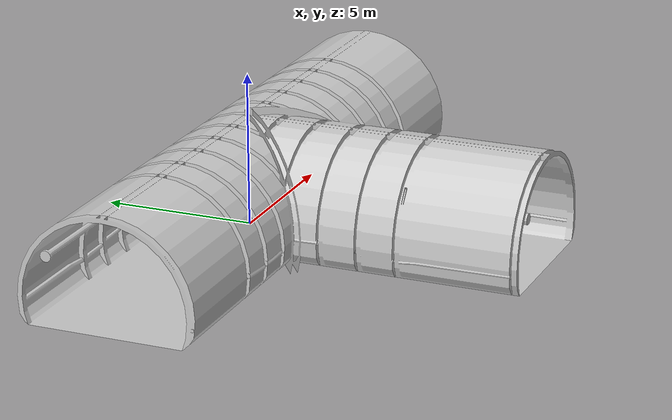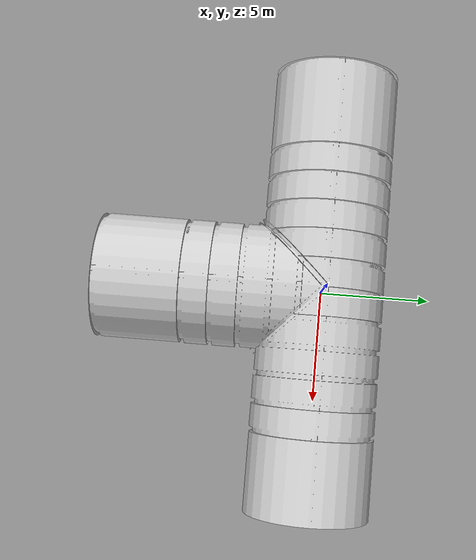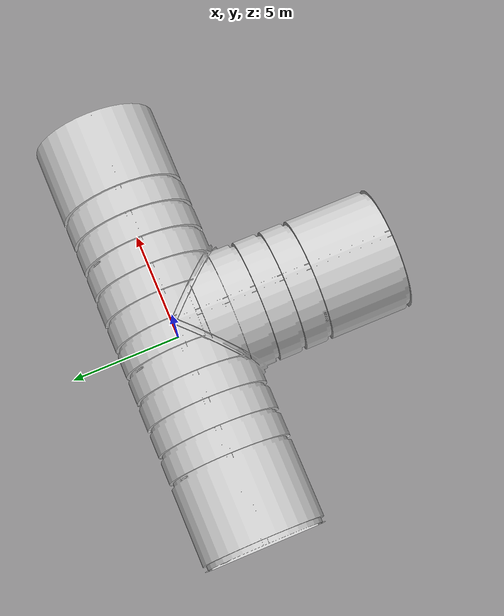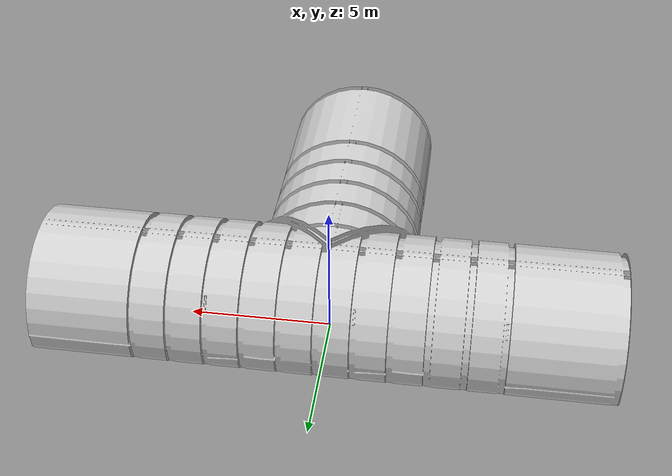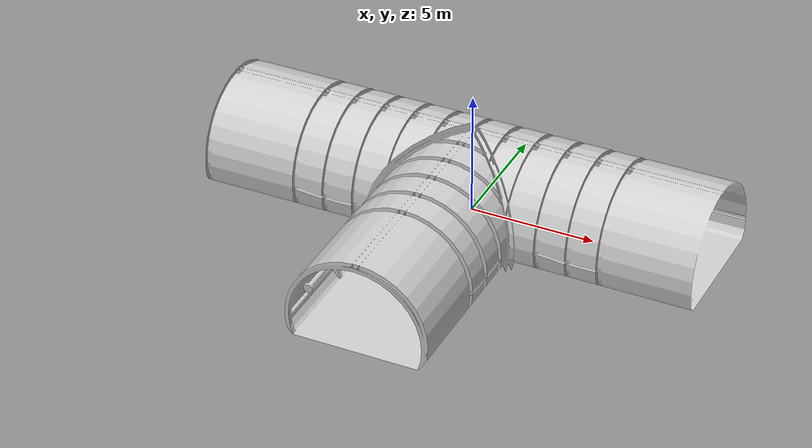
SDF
<?xml version="1.0" ?>
<sdf version="1.6">
  <model name="tunnel_intersection_t">
    <static>true</static>
    <link name="link">
      <collision name="collision">
        <geometry>
          <mesh>
            <uri>model://tunnel_intersection_t/meshes/tunnel_intersection_t.dae</uri>
          </mesh>
        </geometry>
      </collision>
      <visual name="visual">
        <geometry>
          <mesh>
            <uri>model://tunnel_intersection_t/meshes/tunnel_intersection_t.dae</uri>
          </mesh>
        </geometry>
      </visual>
    </link>
  </model>
</sdf>
